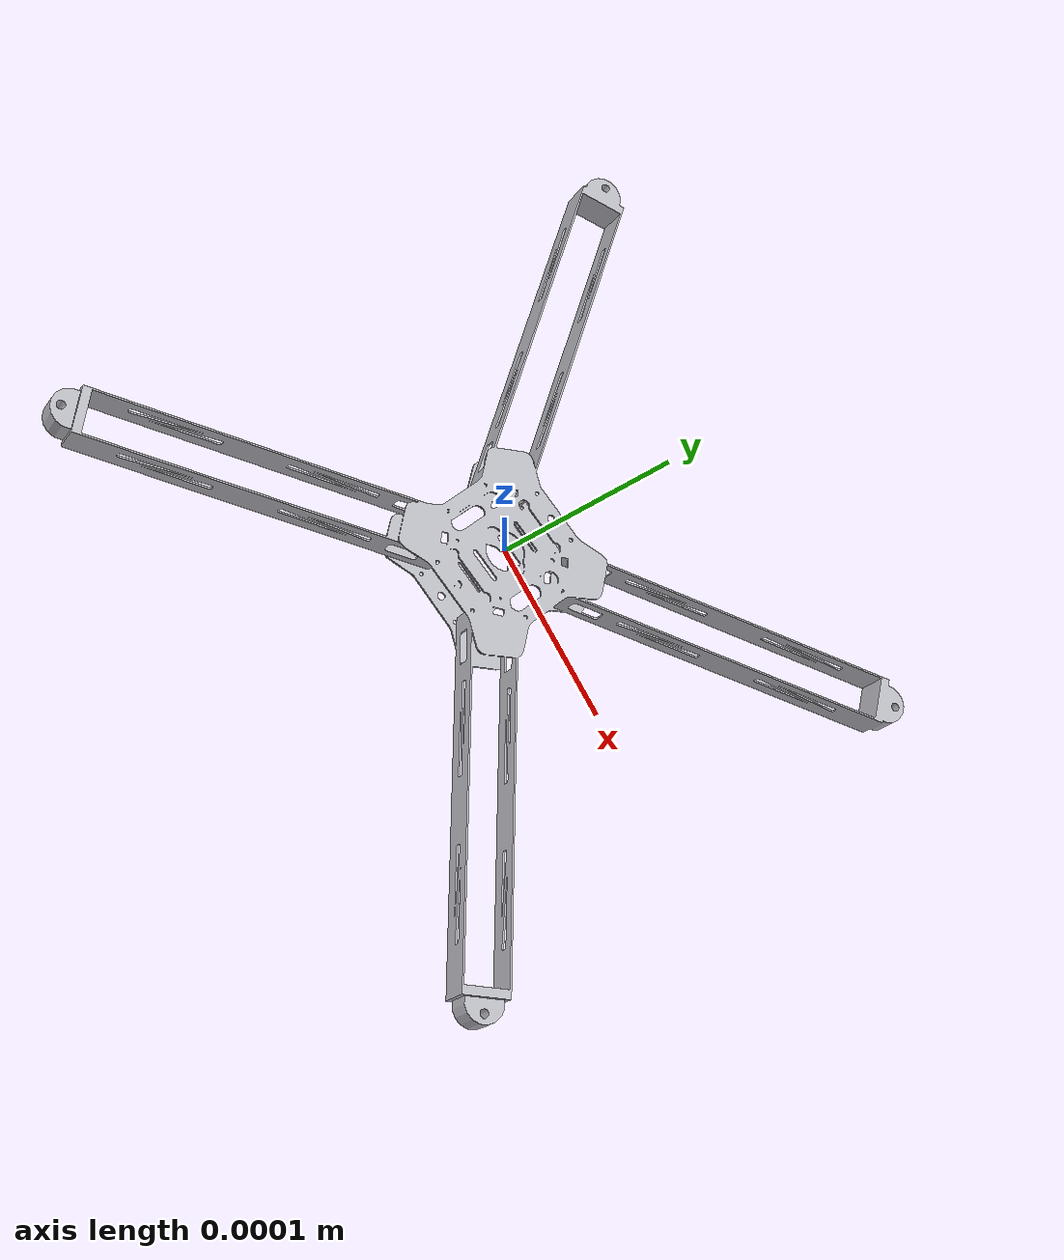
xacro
<?xml version="1.0" ?>
<robot name="Drone" xmlns:xacro="http://www.ros.org/wiki/xacro">

<xacro:include filename="$(find Drone_description)/urdf/materials.xacro" />
<xacro:include filename="$(find Drone_description)/urdf/Drone.trans" />
<xacro:include filename="$(find Drone_description)/urdf/Drone.gazebo" />
<link name="base_link">
  <inertial>
    <origin rpy="0 0 0" xyz="0.0002908668831702532 0.0008000000000000018 -0.013072060871568624"/>
    <mass value="0.3307167300651813"/>
    <inertia ixx="0.002481" ixy="0.0" ixz="1.5e-05" iyy="0.002718" iyz="0.0" izz="0.000237"/>
  </inertial>
  <visual>
    <origin rpy="0 0 0" xyz="0 0 0"/>
    <geometry>
      <mesh filename="package://Drone_description/meshes/base_link.stl" scale="0.001 0.001 0.001"/>
    </geometry>
    <material name="silver"/>
  </visual>
  <collision>
    <origin rpy="0 0 0" xyz="0 0 0"/>
    <geometry>
      <mesh filename="package://Drone_description/meshes/base_link.stl" scale="0.001 0.001 0.001"/>
    </geometry>
  </collision>
</link>

</robot>
